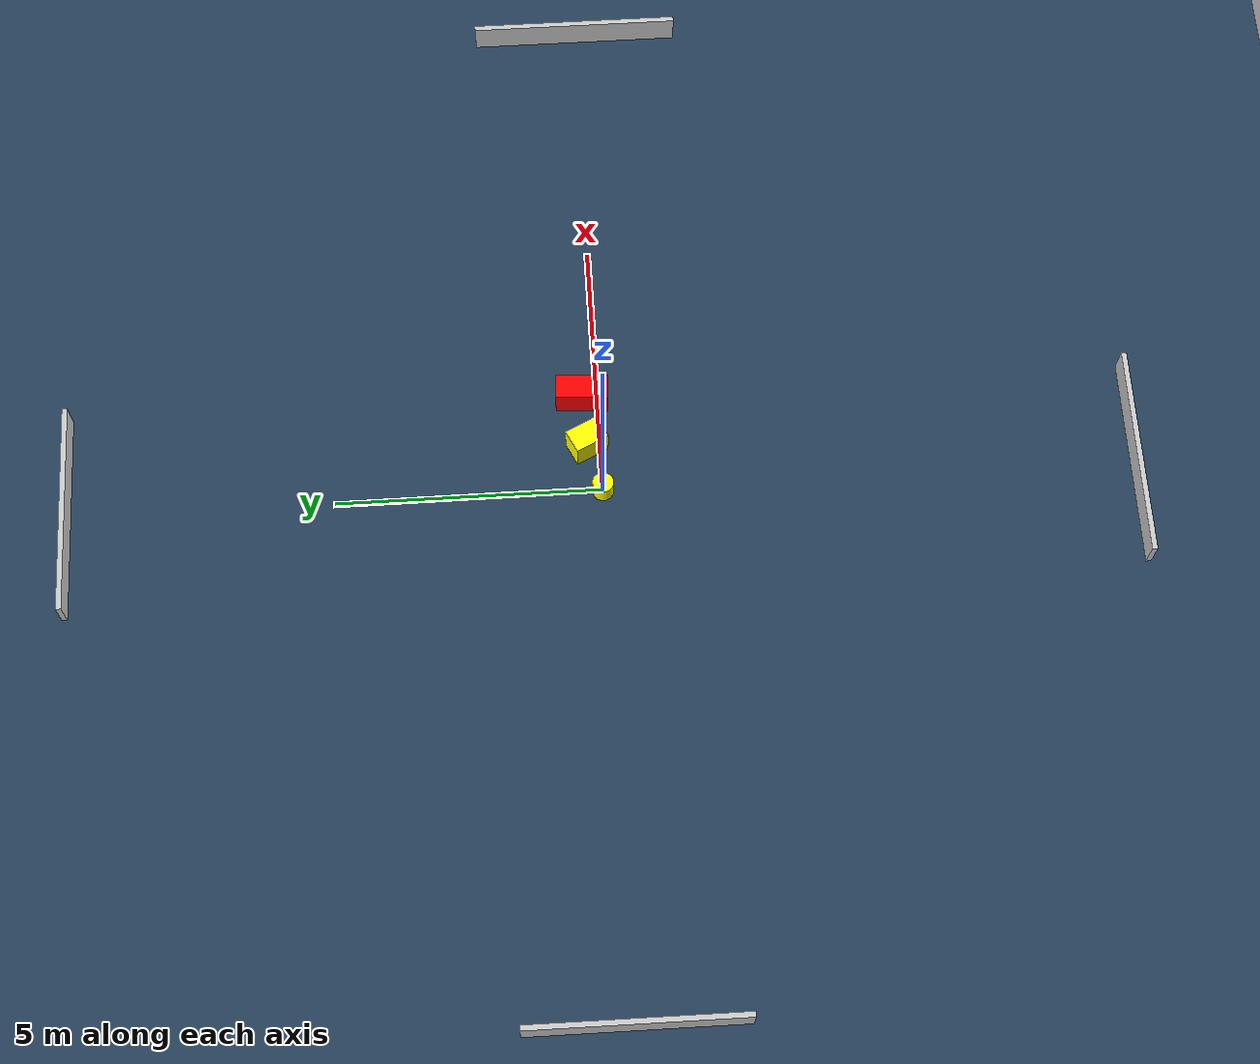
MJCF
<?xml version="1.0" ?>
<mujoco model="generated_environment">
  <option timestep="0.01" integrator="RK4" cone="elliptic"/>
  <default>
    <geom density="1"/>
  </default>
  <asset>
    <texture builtin="gradient" height="3072" name="skybox" rgb1="0.3 0.5 0.7" rgb2="0 0 0" type="skybox" width="512"/>
    <texture builtin="checker" height="300" name="groundplane" rgb1="0.2 0.3 0.4" rgb2="0.1 0.2 0.3" type="2d" width="300"/>
    <material name="groundplane" reflectance="0.2" texrepeat="5 5" texture="groundplane"/>
  </asset>
  <worldbody>
    <light dir="0 0 -1" directional="true" pos="0 0 1.5"/>
    <geom condim="3" friction="0.5 0.005 0.001" material="groundplane" name="floor" pos="0 0 0" size="0 0 0.05" type="plane"/>
    <body name="walls">
      <geom name="wall_1" condim="4" pos="-10.0 0.0 0.3" rgba="0.800000011920929 0.800000011920929 0.800000011920929 1.0" size="0.05 2.0 0.3" type="box"/>
      <geom name="wall_2" condim="4" pos="10.0 0.0 0.3" rgba="0.800000011920929 0.800000011920929 0.800000011920929 1.0" size="0.05 2.0 0.3" type="box"/>
      <geom name="wall_3" condim="4" pos="0.0 -10.0 0.3" rgba="0.800000011920929 0.800000011920929 0.800000011920929 1.0" size="2.0 0.05 0.3" type="box"/>
      <geom name="wall_4" condim="4" pos="0.0 10.0 0.3" rgba="0.800000011920929 0.800000011920929 0.800000011920929 1.0" size="2.0 0.05 0.3" type="box"/>
    </body>
    <body name="robot">
      <joint name="joint_x" type="slide" pos="0 0 0" axis="1 0 0"/>
      <joint name="joint_y" type="slide" pos="0 0 0" axis="0 1 0"/>
      <geom name="robot" type="cylinder" pos="0.0 0.0 0.2" size="0.2 0.2 0.0" mass="5.0" friction="1.0 0.005 0.0001" condim="4" rgba="1.0 1.0 0.0 1.0"/>
    </body>
    <body name="obstacle_1_movable">
      <geom name="obstacle_1_movable" condim="4" pos="0.9179551555952303 0.25178444478382994 0.3" euler="0 0 296.25300678437304" friction="0.0 0.005 0.001" rgba="1.0 1.0 0.0 1.0" size="0.32950086117033783 0.2289747472051671 0.3" type="box" mass="0.1"/>
      <joint type="free"/>
    </body>
    <body name="obstacle_2_static">
      <geom name="obstacle_2_static" condim="4" pos="1.9028417654513479 0.2905996400336471 0.3" euler="0 0 266.384408857024" friction="0.0 0.005 0.001" rgba="1.0 0.0 0.0 1.0" size="0.48996293048797146 0.23487527649257423 0.3" type="box"/>
    </body>
  </worldbody>
  <actuator>
    <motor name="actuator_x" joint="joint_x" gear="1" ctrlrange="-1 1"/>
    <motor name="actuator_y" joint="joint_y" gear="1" ctrlrange="-1 1"/>
  </actuator>
</mujoco>
